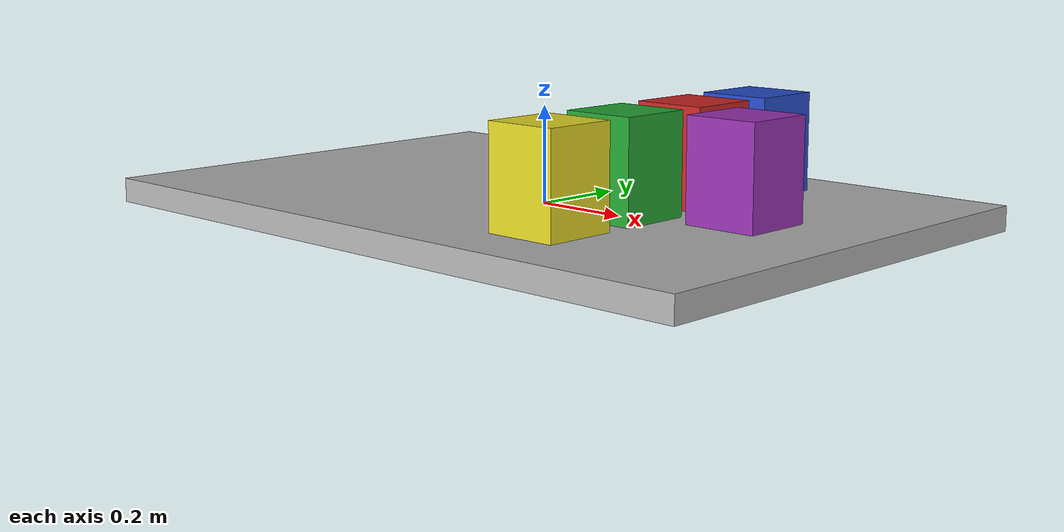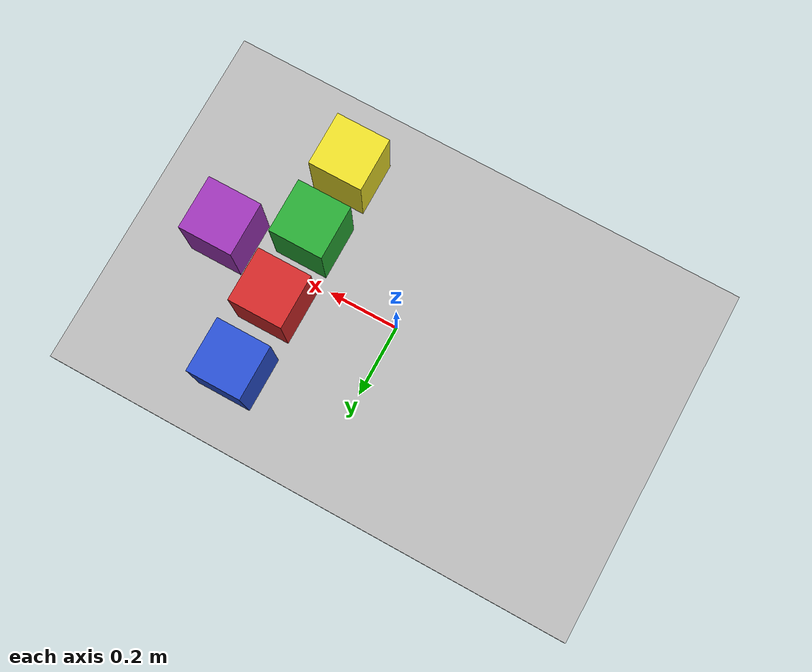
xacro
<?xml version="1.0"?>
<robot name="posha_workspace" xmlns:xacro="http://www.ros.org/wiki/xacro">

  <xacro:property name="base_length" value="1.5" />
  <xacro:property name="base_width" value="1.0" />
  <xacro:property name="base_height" value="0.05" />

  <!-- Base Platform -->
  <link name="base_platform">
    <inertial>
      <mass value="10"/>
      <inertia ixx="0.1" ixy="0" ixz="0" iyy="0.1" iyz="0" izz="0.1"/>
    </inertial>
    <visual>
      <geometry>
        <box size="${base_length} ${base_width} ${base_height}"/>
      </geometry>
      <material name="gray">
        <color rgba="0.7 0.7 0.7 1.0"/>
      </material>
    </visual>
    <collision>
      <geometry>
        <box size="${base_length} ${base_width} ${base_height}"/>
      </geometry>
    </collision>
  </link>

  <!-- Macro Container Macro -->
  <xacro:macro name="macro_container" params="name x y color">
    <link name="${name}">
      <inertial>
        <mass value="1.2"/>
        <inertia ixx="0.01" ixy="0" ixz="0" iyy="0.01" iyz="0" izz="0.01"/>
      </inertial>
      <visual>
        <geometry>
          <box size="0.15 0.15 0.2"/>
        </geometry>
        <material name="${color}"/>
      </visual>
      <collision>
        <geometry>
          <box size="0.15 0.15 0.2"/>
        </geometry>
      </collision>
    </link>

    <joint name="${name}_joint" type="fixed">
      <parent link="base_platform"/>
      <child link="${name}"/>
      <origin xyz="${x} ${y} 0.125" rpy="0 0 0"/>
    </joint>
  </xacro:macro>

  <!-- Instantiate Containers -->
  <xacro:macro_container name="container_1" x="0.3" y="0.3" color="blue"/>
  <xacro:macro_container name="container_2" x="0.3" y="0.1" color="red"/>
  <xacro:macro_container name="container_3" x="0.3" y="-0.1" color="green"/>
  <xacro:macro_container name="container_4" x="0.3" y="-0.3" color="yellow"/>
  <xacro:macro_container name="container_5" x="0.5" y="0.0" color="purple"/>

</robot>
